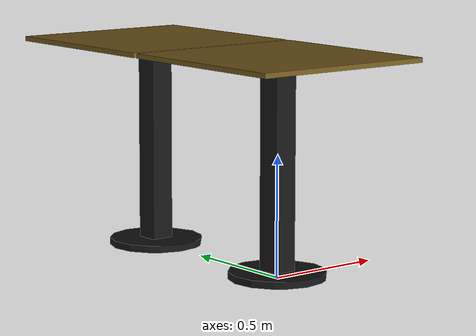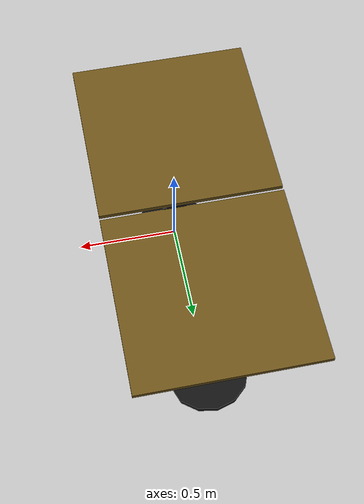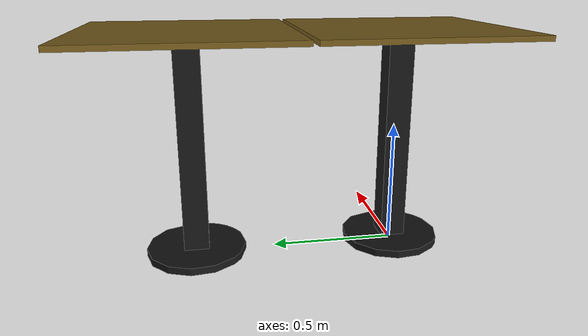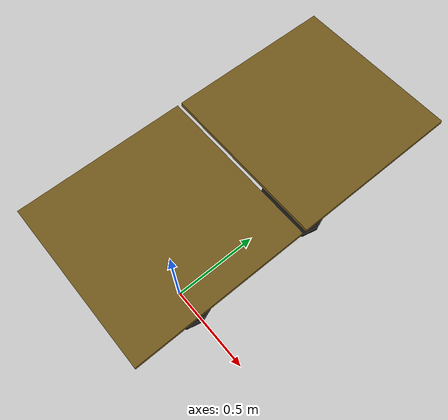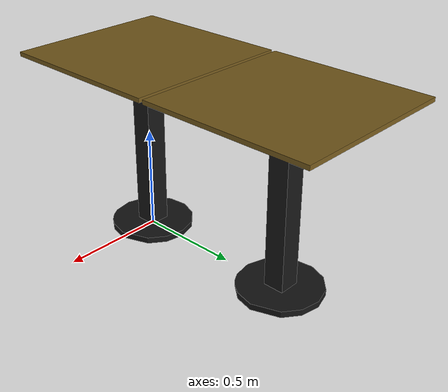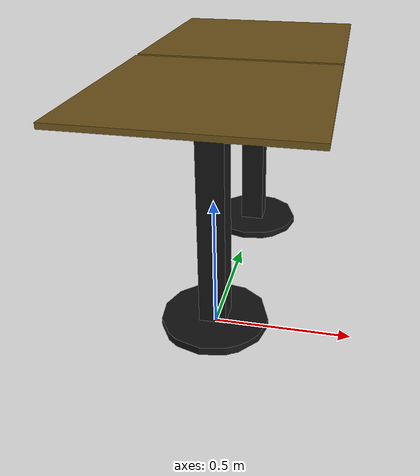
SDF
<?xml version="1.0" ?>
<sdf version="1.5">
  <model name="table_restaurant_4people">
    <link name="link">
      <pose>0 0 0 0 0 0</pose>
      <collision name="collision">
        <geometry>
          <mesh>
            <uri>model://table_restaurant_4people/meshes/model.dae</uri>
          </mesh>
        </geometry>
      </collision>
      <visual name="visual">
        <geometry>
          <mesh>
            <uri>model://table_restaurant_4people/meshes/model.dae</uri>
          </mesh>
        </geometry>
      </visual>
    </link>
    <static>1</static>
  </model>
</sdf>
